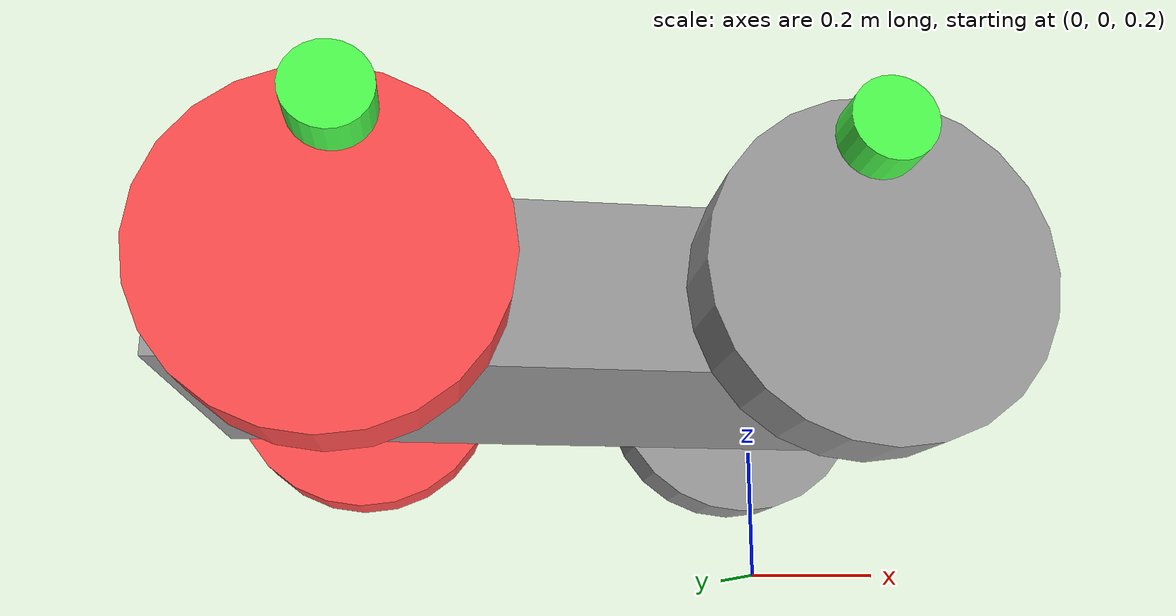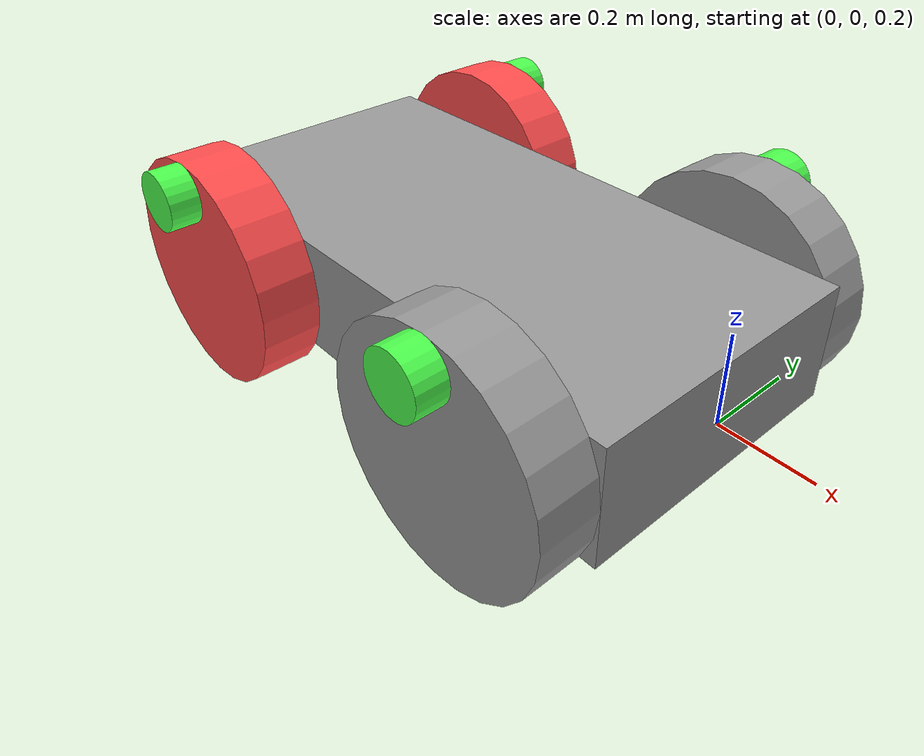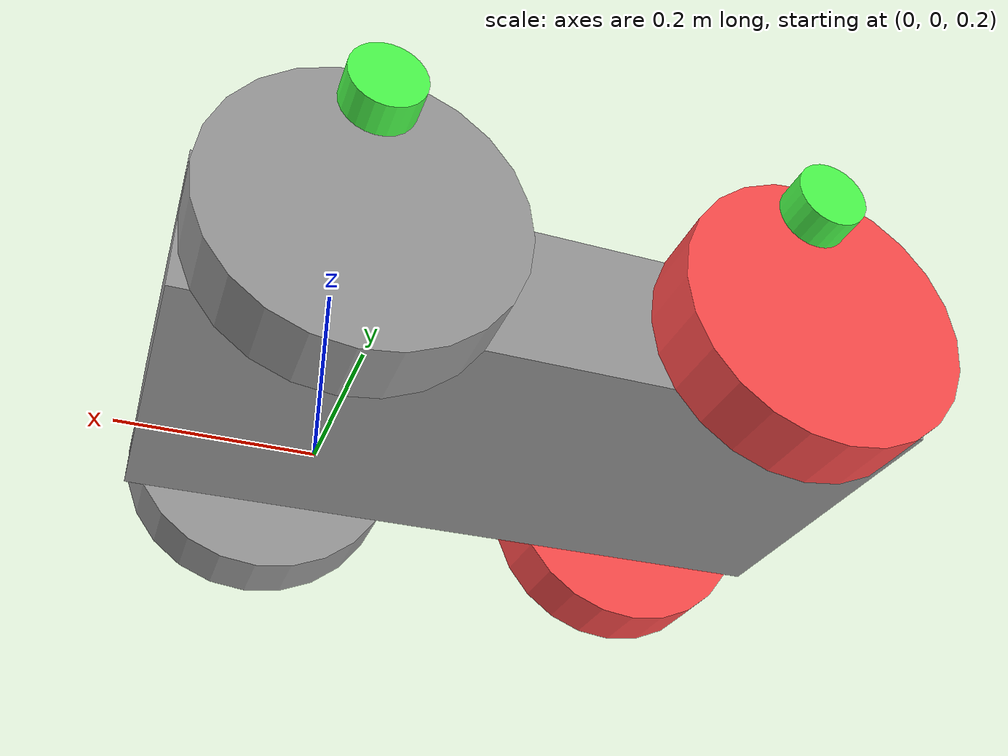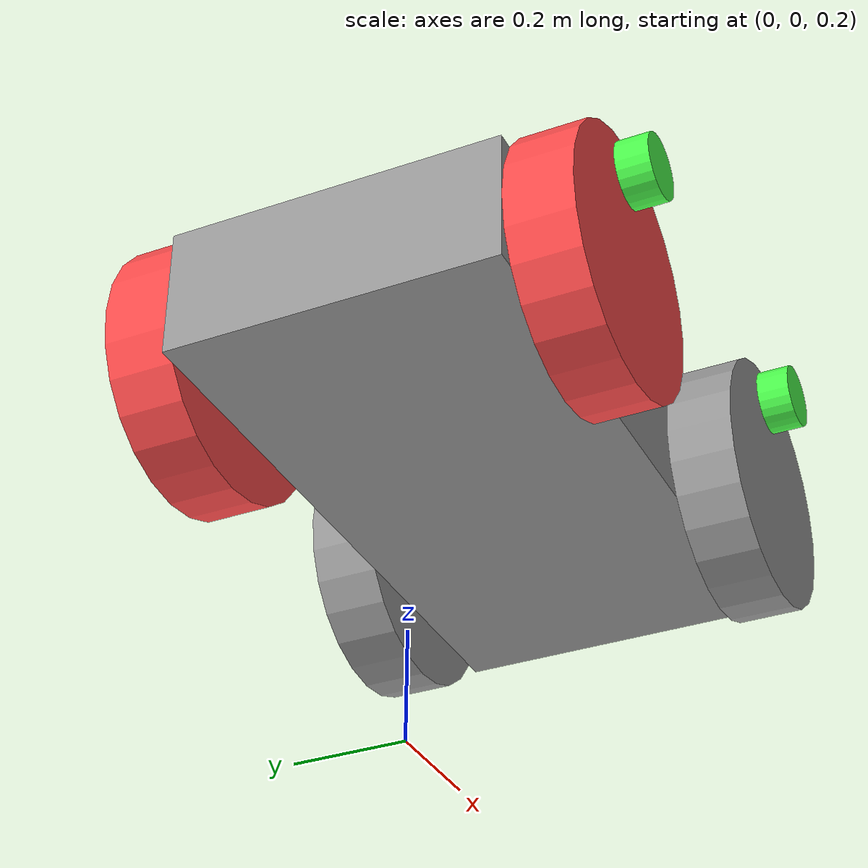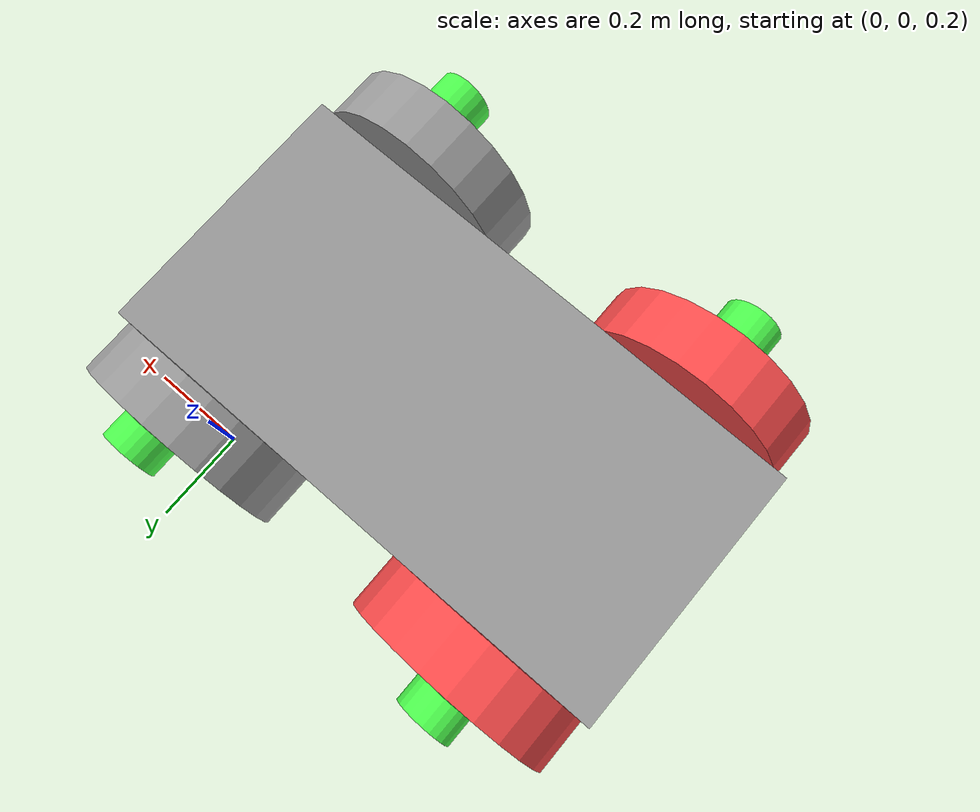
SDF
<?xml version='1.0'?>
<sdf version='1.7'>
  <model name='car'>
    <link name='body'>
      <inertial>
        <mass>1</mass>
        <inertia>
          <ixx>0.166667</ixx>
          <ixy>0</ixy>
          <ixz>0</ixz>
          <iyy>0.166667</iyy>
          <iyz>0</iyz>
          <izz>0.166667</izz>
        </inertia>
        <pose>0 0 0 0 -0 0</pose>
      </inertial>
      <pose>-0.324573 -0.290339 0.5 0 -0 0</pose>
      <gravity>1</gravity>
      <self_collide>0</self_collide>
      <kinematic>0</kinematic>
      <enable_wind>0</enable_wind>
      <visual name='visual'>
        <pose>0 0 0 0 -0 0</pose>
        <geometry>
          <box>
            <size>1 0.5 0.2</size>
          </box>
        </geometry>
        <material>
          <lighting>1</lighting>
          <script>
            <uri>file://media/materials/scripts/gazebo.material</uri>
            <name>Gazebo/Grey</name>
          </script>
          <shader type='pixel'>
            <normal_map>__default__</normal_map>
          </shader>
          <ambient>0.3 0.3 0.3 1</ambient>
          <diffuse>0.7 0.7 0.7 1</diffuse>
          <specular>0.01 0.01 0.01 1</specular>
          <emissive>0 0 0 1</emissive>
        </material>
        <transparency>0</transparency>
        <cast_shadows>1</cast_shadows>
      </visual>
      <collision name='collision'>
        <laser_retro>0</laser_retro>
        <max_contacts>10</max_contacts>
        <pose>0 0 0 0 -0 0</pose>
        <geometry>
          <box>
            <size>1 0.5 0.2</size>
          </box>
        </geometry>
        <surface>
          <friction>
            <ode>
              <mu>1</mu>
              <mu2>1</mu2>
              <fdir1>0 0 0</fdir1>
              <slip1>0</slip1>
              <slip2>0</slip2>
            </ode>
            <torsional>
              <coefficient>1</coefficient>
              <patch_radius>0</patch_radius>
              <surface_radius>0</surface_radius>
              <use_patch_radius>1</use_patch_radius>
              <ode>
                <slip>0</slip>
              </ode>
            </torsional>
          </friction>
          <bounce>
            <restitution_coefficient>0</restitution_coefficient>
            <threshold>1e+06</threshold>
          </bounce>
          <contact>
            <collide_without_contact>0</collide_without_contact>
            <collide_without_contact_bitmask>1</collide_without_contact_bitmask>
            <collide_bitmask>1</collide_bitmask>
            <ode>
              <soft_cfm>0</soft_cfm>
              <soft_erp>0.2</soft_erp>
              <kp>1e+13</kp>
              <kd>1</kd>
              <max_vel>0.01</max_vel>
              <min_depth>0</min_depth>
            </ode>
            <bullet>
              <split_impulse>1</split_impulse>
              <split_impulse_penetration_threshold>-0.01</split_impulse_penetration_threshold>
              <soft_cfm>0</soft_cfm>
              <soft_erp>0.2</soft_erp>
              <kp>1e+13</kp>
              <kd>1</kd>
            </bullet>
          </contact>
        </surface>
      </collision>
    </link>
    <link name='back_left_wheel'>
      <inertial>
        <mass>1</mass>
        <inertia>
          <ixx>0.145833</ixx>
          <ixy>0</ixy>
          <ixz>0</ixz>
          <iyy>0.145833</iyy>
          <iyz>0</iyz>
          <izz>0.125</izz>
        </inertia>
        <pose>0 0 0 0 -0 0</pose>
      </inertial>
      <pose>-0.024573 -0.59034 0.5 1.5708 -0 0</pose>
      <gravity>1</gravity>
      <self_collide>0</self_collide>
      <kinematic>0</kinematic>
      <enable_wind>0</enable_wind>
      <visual name='visual'>
        <pose>0 0 0 0 -0 0</pose>
        <geometry>
          <cylinder>
            <radius>0.2</radius>
            <length>0.1</length>
          </cylinder>
        </geometry>
        <material>
          <lighting>1</lighting>
          <script>
            <uri>file://media/materials/scripts/gazebo.material</uri>
            <name>Gazebo/Grey</name>
          </script>
          <shader type='pixel'>
            <normal_map>__default__</normal_map>
          </shader>
          <ambient>0.3 0.3 0.3 1</ambient>
          <diffuse>0.7 0.7 0.7 1</diffuse>
          <specular>0.01 0.01 0.01 1</specular>
          <emissive>0 0 0 1</emissive>
        </material>
        <transparency>0</transparency>
        <cast_shadows>1</cast_shadows>
      </visual>
      <collision name='collision'>
        <laser_retro>0</laser_retro>
        <max_contacts>10</max_contacts>
        <pose>0 0 0 0 -0 0</pose>
        <geometry>
          <cylinder>
            <radius>0.2</radius>
            <length>0.1</length>
          </cylinder>
        </geometry>
        <surface>
          <friction>
            <ode>
              <mu>1</mu>
              <mu2>1</mu2>
              <fdir1>0 0 0</fdir1>
              <slip1>0.5</slip1>
              <slip2>0</slip2>
            </ode>
            <torsional>
              <coefficient>1</coefficient>
              <patch_radius>0</patch_radius>
              <surface_radius>0</surface_radius>
              <use_patch_radius>1</use_patch_radius>
              <ode>
                <slip>0</slip>
              </ode>
            </torsional>
          </friction>
          <bounce>
            <restitution_coefficient>0</restitution_coefficient>
            <threshold>1e+06</threshold>
          </bounce>
          <contact>
            <collide_without_contact>0</collide_without_contact>
            <collide_without_contact_bitmask>1</collide_without_contact_bitmask>
            <collide_bitmask>1</collide_bitmask>
            <ode>
              <soft_cfm>0</soft_cfm>
              <soft_erp>0.2</soft_erp>
              <kp>1e+13</kp>
              <kd>1</kd>
              <max_vel>0.01</max_vel>
              <min_depth>0.005</min_depth>
            </ode>
            <bullet>
              <split_impulse>1</split_impulse>
              <split_impulse_penetration_threshold>-0.01</split_impulse_penetration_threshold>
              <soft_cfm>0</soft_cfm>
              <soft_erp>0.2</soft_erp>
              <kp>1e+13</kp>
              <kd>1</kd>
            </bullet>
          </contact>
        </surface>
      </collision>
    </link>
    <link name='back_right_wheel'>
      <inertial>
        <mass>1</mass>
        <inertia>
          <ixx>0.145833</ixx>
          <ixy>0</ixy>
          <ixz>0</ixz>
          <iyy>0.145833</iyy>
          <iyz>0</iyz>
          <izz>0.125</izz>
        </inertia>
        <pose>0 0 0 0 -0 0</pose>
      </inertial>
      <pose>-0.024573 0.009661 0.5 1.5708 -0 0</pose>
      <gravity>1</gravity>
      <self_collide>0</self_collide>
      <kinematic>0</kinematic>
      <enable_wind>0</enable_wind>
      <visual name='visual'>
        <pose>0 0 0 0 -0 0</pose>
        <geometry>
          <cylinder>
            <radius>0.2</radius>
            <length>0.1</length>
          </cylinder>
        </geometry>
        <material>
          <lighting>1</lighting>
          <script>
            <uri>file://media/materials/scripts/gazebo.material</uri>
            <name>Gazebo/Grey</name>
          </script>
          <shader type='pixel'>
            <normal_map>__default__</normal_map>
          </shader>
          <ambient>0.3 0.3 0.3 1</ambient>
          <diffuse>0.7 0.7 0.7 1</diffuse>
          <specular>0.01 0.01 0.01 1</specular>
          <emissive>0 0 0 1</emissive>
        </material>
        <transparency>0</transparency>
        <cast_shadows>1</cast_shadows>
      </visual>
      <collision name='collision'>
        <laser_retro>0</laser_retro>
        <max_contacts>10</max_contacts>
        <pose>0 0 0 0 -0 0</pose>
        <geometry>
          <cylinder>
            <radius>0.2</radius>
            <length>0.1</length>
          </cylinder>
        </geometry>
        <surface>
          <friction>
            <ode>
              <mu>1</mu>
              <mu2>1</mu2>
              <fdir1>0 0 0</fdir1>
              <slip1>0.5</slip1>
              <slip2>0</slip2>
            </ode>
            <torsional>
              <coefficient>1</coefficient>
              <patch_radius>0</patch_radius>
              <surface_radius>0</surface_radius>
              <use_patch_radius>1</use_patch_radius>
              <ode>
                <slip>0</slip>
              </ode>
            </torsional>
          </friction>
          <bounce>
            <restitution_coefficient>0</restitution_coefficient>
            <threshold>1e+06</threshold>
          </bounce>
          <contact>
            <collide_without_contact>0</collide_without_contact>
            <collide_without_contact_bitmask>1</collide_without_contact_bitmask>
            <collide_bitmask>1</collide_bitmask>
            <ode>
              <soft_cfm>0</soft_cfm>
              <soft_erp>0.2</soft_erp>
              <kp>1e+13</kp>
              <kd>1</kd>
              <max_vel>0.01</max_vel>
              <min_depth>0.005</min_depth>
            </ode>
            <bullet>
              <split_impulse>1</split_impulse>
              <split_impulse_penetration_threshold>-0.01</split_impulse_penetration_threshold>
              <soft_cfm>0</soft_cfm>
              <soft_erp>0.2</soft_erp>
              <kp>1e+13</kp>
              <kd>1</kd>
            </bullet>
          </contact>
        </surface>
      </collision>
    </link>
    <link name='front_left_wheel'>
      <inertial>
        <mass>1</mass>
        <inertia>
          <ixx>0.145833</ixx>
          <ixy>0</ixy>
          <ixz>0</ixz>
          <iyy>0.145833</iyy>
          <iyz>0</iyz>
          <izz>0.125</izz>
        </inertia>
        <pose>0 0 0 0 -0 0</pose>
      </inertial>
      <pose>-0.624573 -0.59034 0.5 1.5708 -0 0</pose>
      <gravity>1</gravity>
      <self_collide>0</self_collide>
      <kinematic>0</kinematic>
      <enable_wind>0</enable_wind>
      <visual name='visual'>
        <pose>0 0 0 0 -0 0</pose>
        <geometry>
          <cylinder>
            <radius>0.2</radius>
            <length>0.1</length>
          </cylinder>
        </geometry>
        <material>
          <lighting>1</lighting>
          <script>
            <uri>file://media/materials/scripts/gazebo.material</uri>
            <name>Gazebo/Grey</name>
          </script>
          <shader type='pixel'>
            <normal_map>__default__</normal_map>
          </shader>
          <ambient>1 0.3 0.3 1</ambient>
          <diffuse>0.7 0.7 0.7 1</diffuse>
          <specular>0.01 0.01 0.01 1</specular>
          <emissive>0 0 0 1</emissive>
        </material>
        <transparency>0</transparency>
        <cast_shadows>1</cast_shadows>
      </visual>
      <collision name='collision'>
        <laser_retro>0</laser_retro>
        <max_contacts>10</max_contacts>
        <pose>0 0 0 0 -0 0</pose>
        <geometry>
          <cylinder>
            <radius>0.2</radius>
            <length>0.1</length>
          </cylinder>
        </geometry>
        <surface>
          <friction>
            <ode>
              <mu>1</mu>
              <mu2>1</mu2>
              <fdir1>0 0 0</fdir1>
              <slip1>0.5</slip1>
              <slip2>0</slip2>
            </ode>
            <torsional>
              <coefficient>1</coefficient>
              <patch_radius>0</patch_radius>
              <surface_radius>0</surface_radius>
              <use_patch_radius>1</use_patch_radius>
              <ode>
                <slip>0</slip>
              </ode>
            </torsional>
          </friction>
          <bounce>
            <restitution_coefficient>0</restitution_coefficient>
            <threshold>1e+06</threshold>
          </bounce>
          <contact>
            <collide_without_contact>0</collide_without_contact>
            <collide_without_contact_bitmask>1</collide_without_contact_bitmask>
            <collide_bitmask>1</collide_bitmask>
            <ode>
              <soft_cfm>0</soft_cfm>
              <soft_erp>0.2</soft_erp>
              <kp>1e+13</kp>
              <kd>1</kd>
              <max_vel>0.01</max_vel>
              <min_depth>0.005</min_depth>
            </ode>
            <bullet>
              <split_impulse>1</split_impulse>
              <split_impulse_penetration_threshold>-0.01</split_impulse_penetration_threshold>
              <soft_cfm>0</soft_cfm>
              <soft_erp>0.2</soft_erp>
              <kp>1e+13</kp>
              <kd>1</kd>
            </bullet>
          </contact>
        </surface>
      </collision>
    </link>
    <link name='front_right_wheel'>
      <inertial>
        <mass>1</mass>
        <inertia>
          <ixx>0.145833</ixx>
          <ixy>0</ixy>
          <ixz>0</ixz>
          <iyy>0.145833</iyy>
          <iyz>0</iyz>
          <izz>0.125</izz>
        </inertia>
        <pose>0 0 0 0 -0 0</pose>
      </inertial>
      <pose>-0.624573 0.009662 0.5 1.5708 -0 0</pose>
      <gravity>1</gravity>
      <self_collide>0</self_collide>
      <kinematic>0</kinematic>
      <enable_wind>0</enable_wind>
      <visual name='visual'>
        <pose>0 0 0 0 -0 0</pose>
        <geometry>
          <cylinder>
            <radius>0.2</radius>
            <length>0.1</length>
          </cylinder>
        </geometry>
        <material>
          <lighting>1</lighting>
          <script>
            <uri>file://media/materials/scripts/gazebo.material</uri>
            <name>Gazebo/Grey</name>
          </script>
          <shader type='pixel'>
            <normal_map>__default__</normal_map>
          </shader>
          <ambient>1 0.3 0.3 1</ambient>
          <diffuse>0.7 0.7 0.7 1</diffuse>
          <specular>0.01 0.01 0.01 1</specular>
          <emissive>0 0 0 1</emissive>
        </material>
        <transparency>0</transparency>
        <cast_shadows>1</cast_shadows>
      </visual>
      <collision name='collision'>
        <laser_retro>0</laser_retro>
        <max_contacts>10</max_contacts>
        <pose>0 0 0 0 -0 0</pose>
        <geometry>
          <cylinder>
            <radius>0.2</radius>
            <length>0.1</length>
          </cylinder>
        </geometry>
        <surface>
          <friction>
            <ode>
              <mu>1</mu>
              <mu2>1</mu2>
              <fdir1>0 0 0</fdir1>
              <slip1>0.5</slip1>
              <slip2>0</slip2>
            </ode>
            <torsional>
              <coefficient>1</coefficient>
              <patch_radius>0</patch_radius>
              <surface_radius>0</surface_radius>
              <use_patch_radius>1</use_patch_radius>
              <ode>
                <slip>0</slip>
              </ode>
            </torsional>
          </friction>
          <bounce>
            <restitution_coefficient>0</restitution_coefficient>
            <threshold>1e+06</threshold>
          </bounce>
          <contact>
            <collide_without_contact>0</collide_without_contact>
            <collide_without_contact_bitmask>1</collide_without_contact_bitmask>
            <collide_bitmask>1</collide_bitmask>
            <ode>
              <soft_cfm>0</soft_cfm>
              <soft_erp>0.2</soft_erp>
              <kp>1e+13</kp>
              <kd>1</kd>
              <max_vel>0.01</max_vel>
              <min_depth>0.005</min_depth>
            </ode>
            <bullet>
              <split_impulse>1</split_impulse>
              <split_impulse_penetration_threshold>-0.01</split_impulse_penetration_threshold>
              <soft_cfm>0</soft_cfm>
              <soft_erp>0.2</soft_erp>
              <kp>1e+13</kp>
              <kd>1</kd>
            </bullet>
          </contact>
        </surface>
      </collision>
    </link>
    <link name='link_0_clone'>
      <inertial>
        <mass>1e-08</mass>
        <inertia>
          <ixx>0</ixx>
          <ixy>0</ixy>
          <ixz>0</ixz>
          <iyy>0</iyy>
          <iyz>0</iyz>
          <izz>0</izz>
        </inertia>
        <pose>0 0 0 0 -0 0</pose>
      </inertial>
      <pose>-0.624573 -0.66534 0.65 4e-06 -0 6e-06</pose>
      <gravity>1</gravity>
      <self_collide>0</self_collide>
      <kinematic>0</kinematic>
      <enable_wind>0</enable_wind>
      <visual name='visual'>
        <pose>0 0 0 -1.6555 1.57079 3.05689</pose>
        <geometry>
          <cylinder>
            <radius>0.05</radius>
            <length>0.05</length>
          </cylinder>
        </geometry>
        <material>
          <lighting>1</lighting>
          <script>
            <uri>file://media/materials/scripts/gazebo.material</uri>
            <name>Gazebo/Grey</name>
          </script>
          <shader type='pixel'>
            <normal_map>__default__</normal_map>
          </shader>
          <ambient>0.3 1 0.3 1</ambient>
          <diffuse>0.7 0.7 0.7 1</diffuse>
          <specular>0.01 0.01 0.01 1</specular>
          <emissive>0 0 0 1</emissive>
        </material>
        <transparency>0</transparency>
        <cast_shadows>1</cast_shadows>
      </visual>
    </link>
    <link name='link_0_clone_0'>
      <inertial>
        <mass>1e-08</mass>
        <inertia>
          <ixx>0</ixx>
          <ixy>0</ixy>
          <ixz>0</ixz>
          <iyy>0</iyy>
          <iyz>0</iyz>
          <izz>0</izz>
        </inertia>
        <pose>0 0 0 0 -0 0</pose>
      </inertial>
      <pose>-0.024587 -0.665331 0.65 3e-06 -0 6e-06</pose>
      <gravity>1</gravity>
      <self_collide>0</self_collide>
      <kinematic>0</kinematic>
      <enable_wind>0</enable_wind>
      <visual name='visual'>
        <pose>0 0 0 -1.6555 1.57079 3.05689</pose>
        <geometry>
          <cylinder>
            <radius>0.05</radius>
            <length>0.05</length>
          </cylinder>
        </geometry>
        <material>
          <lighting>1</lighting>
          <script>
            <uri>file://media/materials/scripts/gazebo.material</uri>
            <name>Gazebo/Grey</name>
          </script>
          <shader type='pixel'>
            <normal_map>__default__</normal_map>
          </shader>
          <ambient>0.3 1 0.3 1</ambient>
          <diffuse>0.7 0.7 0.7 1</diffuse>
          <specular>0.01 0.01 0.01 1</specular>
          <emissive>0 0 0 1</emissive>
        </material>
        <transparency>0</transparency>
        <cast_shadows>1</cast_shadows>
      </visual>
    </link>
    <link name='link_0_clone_1'>
      <inertial>
        <mass>1e-08</mass>
        <inertia>
          <ixx>0</ixx>
          <ixy>0</ixy>
          <ixz>0</ixz>
          <iyy>0</iyy>
          <iyz>0</iyz>
          <izz>0</izz>
        </inertia>
        <pose>0 0 0 0 -0 0</pose>
      </inertial>
      <pose>-0.624552 0.08522 0.65 0 -0 0</pose>
      <gravity>1</gravity>
      <self_collide>0</self_collide>
      <kinematic>0</kinematic>
      <enable_wind>0</enable_wind>
      <visual name='visual'>
        <pose>0 0 0 -1.6555 1.57079 3.05689</pose>
        <geometry>
          <cylinder>
            <radius>0.05</radius>
            <length>0.05</length>
          </cylinder>
        </geometry>
        <material>
          <lighting>1</lighting>
          <script>
            <uri>file://media/materials/scripts/gazebo.material</uri>
            <name>Gazebo/Grey</name>
          </script>
          <shader type='pixel'>
            <normal_map>__default__</normal_map>
          </shader>
          <ambient>0.3 1 0.3 1</ambient>
          <diffuse>0.7 0.7 0.7 1</diffuse>
          <specular>0.01 0.01 0.01 1</specular>
          <emissive>0 0 0 1</emissive>
        </material>
        <transparency>0</transparency>
        <cast_shadows>1</cast_shadows>
      </visual>
    </link>
    <link name='link_0_clone_2'>
      <inertial>
        <mass>1e-08</mass>
        <inertia>
          <ixx>0</ixx>
          <ixy>0</ixy>
          <ixz>0</ixz>
          <iyy>0</iyy>
          <iyz>0</iyz>
          <izz>0</izz>
        </inertia>
        <pose>0 0 0 0 -0 0</pose>
      </inertial>
      <pose>-0.024551 0.085219 0.65 0 -0 0</pose>
      <gravity>1</gravity>
      <self_collide>0</self_collide>
      <kinematic>0</kinematic>
      <enable_wind>0</enable_wind>
      <visual name='visual'>
        <pose>0 0 0 -1.6555 1.57079 3.05689</pose>
        <geometry>
          <cylinder>
            <radius>0.05</radius>
            <length>0.05</length>
          </cylinder>
        </geometry>
        <material>
          <lighting>1</lighting>
          <script>
            <uri>file://media/materials/scripts/gazebo.material</uri>
            <name>Gazebo/Grey</name>
          </script>
          <shader type='pixel'>
            <normal_map>__default__</normal_map>
          </shader>
          <ambient>0.3 1 0.3 1</ambient>
          <diffuse>0.7 0.7 0.7 1</diffuse>
          <specular>0.01 0.01 0.01 1</specular>
          <emissive>0 0 0 1</emissive>
        </material>
        <transparency>0</transparency>
        <cast_shadows>1</cast_shadows>
      </visual>
    </link>
    <joint name='back_left_wheel_JOINT_0' type='fixed'>
      <parent>back_left_wheel</parent>
      <child>link_0_clone_0</child>
      <pose>0 0 0 0 -0 0</pose>
      <physics>
        <ode>
          <limit>
            <cfm>0</cfm>
            <erp>0.2</erp>
          </limit>
          <suspension>
            <cfm>0</cfm>
            <erp>0.2</erp>
          </suspension>
        </ode>
      </physics>
    </joint>
    <joint name='back_left_wheel_joint' type='revolute'>
      <parent>body</parent>
      <child>back_left_wheel</child>
      <pose>0 0 0 0 -0 0</pose>
      <axis>
        <xyz>0 0 1</xyz>
        <limit>
          <lower>-1.79769e+308</lower>
          <upper>1.79769e+308</upper>
          <effort>-1</effort>
          <velocity>-1</velocity>
        </limit>
        <dynamics>
          <spring_reference>0</spring_reference>
          <spring_stiffness>0</spring_stiffness>
          <damping>0</damping>
          <friction>0</friction>
        </dynamics>
      </axis>
      <physics>
        <ode>
          <limit>
            <cfm>0</cfm>
            <erp>0.2</erp>
          </limit>
          <suspension>
            <cfm>0</cfm>
            <erp>0.2</erp>
          </suspension>
        </ode>
      </physics>
    </joint>
    <joint name='back_right_wheel_JOINT_2' type='fixed'>
      <parent>back_right_wheel</parent>
      <child>link_0_clone_2</child>
      <pose>0 0 0 0 -0 0</pose>
      <physics>
        <ode>
          <limit>
            <cfm>0</cfm>
            <erp>0.2</erp>
          </limit>
          <suspension>
            <cfm>0</cfm>
            <erp>0.2</erp>
          </suspension>
        </ode>
      </physics>
    </joint>
    <joint name='back_right_wheel_joint' type='revolute'>
      <parent>body</parent>
      <child>back_right_wheel</child>
      <pose>0 0 0 0 -0 0</pose>
      <axis>
        <xyz>0 0 1</xyz>
        <limit>
          <lower>-1.79769e+308</lower>
          <upper>1.79769e+308</upper>
          <effort>-1</effort>
          <velocity>-1</velocity>
        </limit>
        <dynamics>
          <spring_reference>0</spring_reference>
          <spring_stiffness>0</spring_stiffness>
          <damping>0</damping>
          <friction>0</friction>
        </dynamics>
      </axis>
      <physics>
        <ode>
          <limit>
            <cfm>0</cfm>
            <erp>0.2</erp>
          </limit>
          <suspension>
            <cfm>0</cfm>
            <erp>0.2</erp>
          </suspension>
        </ode>
      </physics>
    </joint>
    <joint name='front_left_wheel_joint' type='revolute'>
      <parent>body</parent>
      <child>front_left_wheel</child>
      <pose>0 0 0 0 -0 0</pose>
      <axis>
        <xyz>0 0 1</xyz>
        <limit>
          <lower>-1.79769e+308</lower>
          <upper>1.79769e+308</upper>
          <effort>-1</effort>
          <velocity>-1</velocity>
        </limit>
        <dynamics>
          <spring_reference>0</spring_reference>
          <spring_stiffness>0</spring_stiffness>
          <damping>0</damping>
          <friction>0</friction>
        </dynamics>
      </axis>
      <physics>
        <ode>
          <limit>
            <cfm>0</cfm>
            <erp>0.2</erp>
          </limit>
          <suspension>
            <cfm>0</cfm>
            <erp>0.2</erp>
          </suspension>
        </ode>
      </physics>
    </joint>
    <joint name='front_right_wheel_JOINT_1' type='fixed'>
      <parent>front_right_wheel</parent>
      <child>link_0_clone_1</child>
      <pose>0 0 0 0 -0 0</pose>
      <physics>
        <ode>
          <limit>
            <cfm>0</cfm>
            <erp>0.2</erp>
          </limit>
          <suspension>
            <cfm>0</cfm>
            <erp>0.2</erp>
          </suspension>
        </ode>
      </physics>
    </joint>
    <joint name='front_right_wheel_joint' type='revolute'>
      <parent>body</parent>
      <child>front_right_wheel</child>
      <pose>0 0 0 0 -0 0</pose>
      <axis>
        <xyz>0 0 1</xyz>
        <limit>
          <lower>-1.79769e+308</lower>
          <upper>1.79769e+308</upper>
          <effort>-1</effort>
          <velocity>-1</velocity>
        </limit>
        <dynamics>
          <spring_reference>0</spring_reference>
          <spring_stiffness>0</spring_stiffness>
          <damping>0</damping>
          <friction>0</friction>
        </dynamics>
      </axis>
      <physics>
        <ode>
          <limit>
            <cfm>0</cfm>
            <erp>0.2</erp>
          </limit>
          <suspension>
            <cfm>0</cfm>
            <erp>0.2</erp>
          </suspension>
        </ode>
      </physics>
    </joint>
    <joint name='link_0_clone_JOINT_0' type='fixed'>
      <parent>front_left_wheel</parent>
      <child>link_0_clone</child>
      <pose>0 0 0 0 -0 0</pose>
      <physics>
        <ode>
          <limit>
            <cfm>0</cfm>
            <erp>0.2</erp>
          </limit>
          <suspension>
            <cfm>0</cfm>
            <erp>0.2</erp>
          </suspension>
        </ode>
      </physics>
    </joint>
    <static>0</static>
    <allow_auto_disable>0</allow_auto_disable>
    <plugin name='car_plugin' filename='libcar_plugin.so'/>
  </model>
</sdf>
